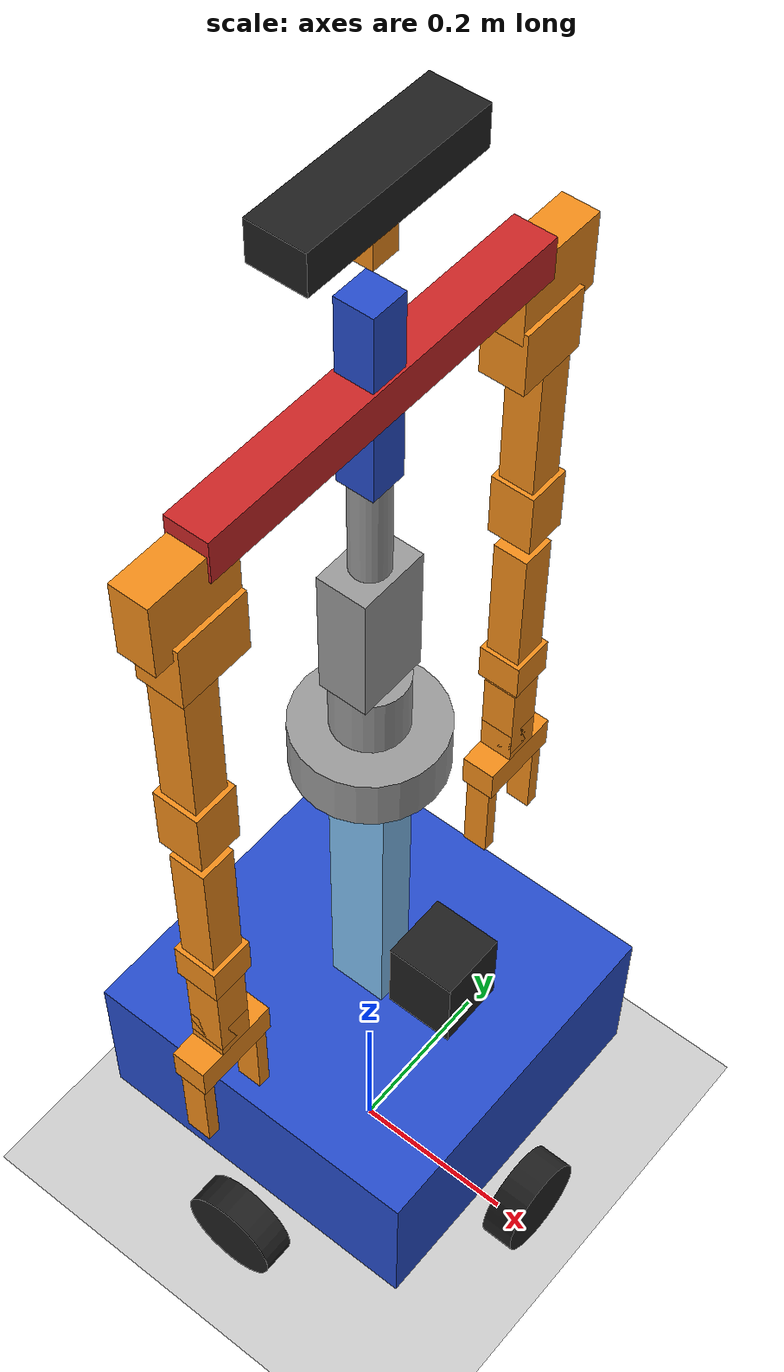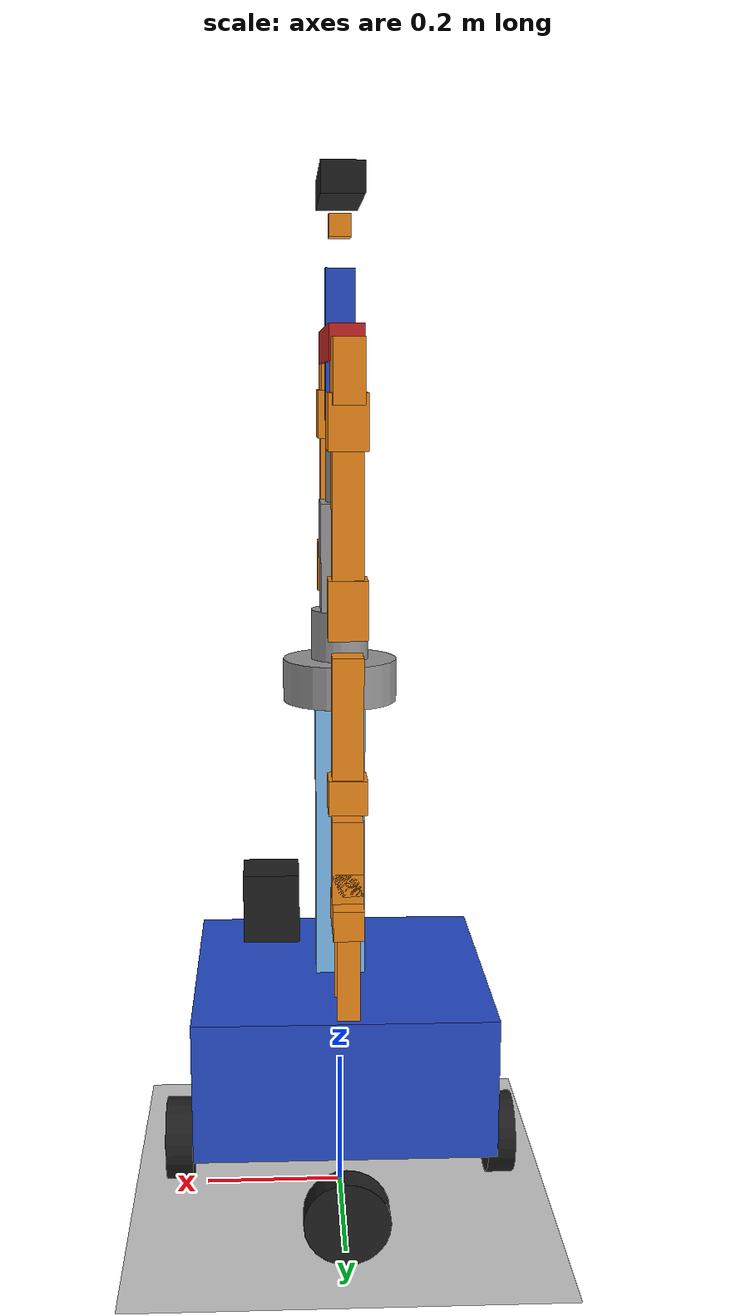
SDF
<sdf version="1.6">
 <world name="default">
  <include><uri>model://ground_plane</uri><pose>0 0 -.0001 0 0 0</pose></include>
  <include><uri>model://sun</uri></include>
  <include><uri>model://justina_simple</uri><pose>0 0 0.01 0 0 0</pose></include>
 </world>
</sdf>

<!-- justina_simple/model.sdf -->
<sdf version='1.6'>
  <model name='justina_simple'>
    <link name='base_link'>
      <pose frame=''>0 0 0 0 -0 0</pose>
      <inertial>
        <pose frame=''>0.000749 0 0.79 0 -0 0</pose>
        <mass>13.35</mass>
        <inertia>
          <ixx>3.96574</ixx>
          <ixy>0</ixy>
          <ixz>0.00349986</ixz>
          <iyy>3.87026</iyy>
          <iyz>8.67362e-19</iyz>
          <izz>0.251702</izz>
        </inertia>
      </inertial>
      <collision name='base_link_collision'>
        <pose frame=''>0 0 0.235 0 -0 0</pose>
        <geometry>
          <box>
            <size>0.42 0.42 0.2</size>
          </box>
        </geometry>
        <surface>
          <contact>
            <ode/>
          </contact>
          <friction>
            <ode/>
          </friction>
        </surface>
      </collision>
      <collision name='base_link_fixed_joint_lump__laser_link_collision_1'>
        <pose frame=''>0.1 0 0.44 0 -0 0</pose>
        <geometry>
          <box>
            <size>0.08 0.08 0.1</size>
          </box>
        </geometry>
        <surface>
          <contact>
            <ode/>
          </contact>
          <friction>
            <ode/>
          </friction>
        </surface>
      </collision>
      <collision name='base_link_fixed_joint_lump__spine_link_collision_2'>
        <pose frame=''>0 0 0.41 0 -0 0</pose>
        <geometry>
          <box>
            <size>0.07 0.045 0.7</size>
          </box>
        </geometry>
        <surface>
          <contact>
            <ode/>
          </contact>
          <friction>
            <ode/>
          </friction>
        </surface>
      </collision>
      <collision name='base_link_fixed_joint_lump__waist_link_collision_3'>
        <pose frame=''>0 0 0.77 0 -0 0</pose>
        <geometry>
          <cylinder>
            <length>0.06</length>
            <radius>0.08</radius>
          </cylinder>
        </geometry>
        <surface>
          <contact>
            <ode/>
          </contact>
          <friction>
            <ode/>
          </friction>
        </surface>
      </collision>
      <collision name='base_link_fixed_joint_lump__waist_link_collision_4'>
        <pose frame=''>0 0 0.83 0 -0 0</pose>
        <geometry>
          <cylinder>
            <length>0.08</length>
            <radius>0.04</radius>
          </cylinder>
        </geometry>
        <surface>
          <contact>
            <ode/>
          </contact>
          <friction>
            <ode/>
          </friction>
        </surface>
      </collision>
      <collision name='base_link_fixed_joint_lump__waist_link_collision_5'>
        <pose frame=''>0 0 0.945 0 -0 0</pose>
        <geometry>
          <box>
            <size>0.055 0.08 0.15</size>
          </box>
        </geometry>
        <surface>
          <contact>
            <ode/>
          </contact>
          <friction>
            <ode/>
          </friction>
        </surface>
      </collision>
      <collision name='base_link_fixed_joint_lump__waist_link_collision_6'>
        <pose frame=''>0 0 1.105 0 -0 0</pose>
        <geometry>
          <cylinder>
            <length>0.17</length>
            <radius>0.02</radius>
          </cylinder>
        </geometry>
        <surface>
          <contact>
            <ode/>
          </contact>
          <friction>
            <ode/>
          </friction>
        </surface>
      </collision>
      <collision name='base_link_fixed_joint_lump__shoulders_link_collision_7'>
        <pose frame=''>0 0 1.23 3.14159 1.57079 3.14159</pose>
        <geometry>
          <box>
            <size>0.045 0.43 0.045</size>
          </box>
        </geometry>
        <surface>
          <contact>
            <ode/>
          </contact>
          <friction>
            <ode/>
          </friction>
        </surface>
      </collision>
      <collision name='base_link_fixed_joint_lump__shoulders_left_link_collision_8'>
        <pose frame=''>-0 0.23 1.195 3.14159 1.57079 3.14159</pose>
        <geometry>
          <box>
            <size>0.08 0.1 0.04</size>
          </box>
        </geometry>
        <surface>
          <contact>
            <ode/>
          </contact>
          <friction>
            <ode/>
          </friction>
        </surface>
      </collision>
      <collision name='base_link_fixed_joint_lump__shoulders_right_link_collision_9'>
        <pose frame=''>-0 -0.23 1.195 3.14159 1.57079 3.14159</pose>
        <geometry>
          <box>
            <size>0.08 0.1 0.04</size>
          </box>
        </geometry>
        <surface>
          <contact>
            <ode/>
          </contact>
          <friction>
            <ode/>
          </friction>
        </surface>
      </collision>
      <collision name='base_link_fixed_joint_lump__wheel_back_collision_10'>
        <pose frame=''>-0.24 0 0.065 1.5708 -0 1.5708</pose>
        <geometry>
          <cylinder>
            <length>0.04</length>
            <radius>0.06</radius>
          </cylinder>
        </geometry>
        <surface>
          <contact>
            <ode/>
          </contact>
          <friction>
            <ode/>
          </friction>
        </surface>
      </collision>
      <collision name='base_link_fixed_joint_lump__wheel_front_collision_11'>
        <pose frame=''>0.24 0 0.065 1.5708 -0 1.5708</pose>
        <geometry>
          <cylinder>
            <length>0.04</length>
            <radius>0.06</radius>
          </cylinder>
        </geometry>
        <surface>
          <contact>
            <ode/>
          </contact>
          <friction>
            <ode/>
          </friction>
        </surface>
      </collision>
      <collision name='base_link_fixed_joint_lump__wheel_left_collision_12'>
        <pose frame=''>0 -0.24 0.065 1.5708 -0 0</pose>
        <geometry>
          <cylinder>
            <length>0.04</length>
            <radius>0.06</radius>
          </cylinder>
        </geometry>
        <surface>
          <contact>
            <ode/>
          </contact>
          <friction>
            <ode/>
          </friction>
        </surface>
      </collision>
      <collision name='base_link_fixed_joint_lump__wheel_right_collision_13'>
        <pose frame=''>0 0.24 0.065 1.5708 -0 0</pose>
        <geometry>
          <cylinder>
            <length>0.04</length>
            <radius>0.06</radius>
          </cylinder>
        </geometry>
        <surface>
          <contact>
            <ode/>
          </contact>
          <friction>
            <ode/>
          </friction>
        </surface>
      </collision>
      <visual name='base_link_visual'>
        <pose frame=''>0 0 0.235 0 -0 0</pose>
        <geometry>
          <box>
            <size>0.42 0.42 0.2</size>
          </box>
        </geometry>
        <material>
          <script>
            <name>Gazebo/Blue</name>
            <uri>file://media/materials/scripts/gazebo.material</uri>
          </script>
        </material>
      </visual>
      <visual name='base_link_fixed_joint_lump__laser_link_visual_1'>
        <pose frame=''>0.1 0 0.44 0 -0 0</pose>
        <geometry>
          <box>
            <size>0.08 0.08 0.1</size>
          </box>
        </geometry>
        <material>
          <script>
            <name>Gazebo/Black</name>
            <uri>file://media/materials/scripts/gazebo.material</uri>
          </script>
        </material>
      </visual>
      <visual name='base_link_fixed_joint_lump__spine_link_visual_2'>
        <pose frame=''>0 0 0.41 0 -0 0</pose>
        <geometry>
          <box>
            <size>0.07 0.045 0.7</size>
          </box>
        </geometry>
        <material>
          <script>
            <name>Gazebo/SkyBlue</name>
            <uri>file://media/materials/scripts/gazebo.material</uri>
          </script>
        </material>
      </visual>
      <visual name='base_link_fixed_joint_lump__waist_link_visual_3'>
        <pose frame=''>0 0 0.77 0 -0 0</pose>
        <geometry>
          <cylinder>
            <length>0.06</length>
            <radius>0.08</radius>
          </cylinder>
        </geometry>
        <material>
          <script>
            <name>Gazebo/Grey</name>
            <uri>file://media/materials/scripts/gazebo.material</uri>
          </script>
        </material>
      </visual>
      <visual name='base_link_fixed_joint_lump__waist_link_visual_4'>
        <pose frame=''>0 0 0.83 0 -0 0</pose>
        <geometry>
          <cylinder>
            <length>0.08</length>
            <radius>0.04</radius>
          </cylinder>
        </geometry>
        <material>
          <script>
            <name>Gazebo/Grey</name>
            <uri>file://media/materials/scripts/gazebo.material</uri>
          </script>
        </material>
      </visual>
      <visual name='base_link_fixed_joint_lump__waist_link_visual_5'>
        <pose frame=''>0 0 0.945 0 -0 0</pose>
        <geometry>
          <box>
            <size>0.055 0.08 0.15</size>
          </box>
        </geometry>
        <material>
          <script>
            <name>Gazebo/Grey</name>
            <uri>file://media/materials/scripts/gazebo.material</uri>
          </script>
        </material>
      </visual>
      <visual name='base_link_fixed_joint_lump__waist_link_visual_6'>
        <pose frame=''>0 0 1.105 0 -0 0</pose>
        <geometry>
          <cylinder>
            <length>0.17</length>
            <radius>0.02</radius>
          </cylinder>
        </geometry>
        <material>
          <script>
            <name>Gazebo/Grey</name>
            <uri>file://media/materials/scripts/gazebo.material</uri>
          </script>
        </material>
      </visual>
      <visual name='base_link_fixed_joint_lump__shoulders_link_visual_7'>
        <pose frame=''>0 0 1.23 3.14159 1.57079 3.14159</pose>
        <geometry>
          <box>
            <size>0.045 0.43 0.045</size>
          </box>
        </geometry>
        <material>
          <script>
            <name>Gazebo/Red</name>
            <uri>file://media/materials/scripts/gazebo.material</uri>
          </script>
        </material>
      </visual>
      <visual name='base_link_fixed_joint_lump__shoulders_left_link_visual_8'>
        <pose frame=''>-0 0.23 1.195 3.14159 1.57079 3.14159</pose>
        <geometry>
          <box>
            <size>0.08 0.1 0.04</size>
          </box>
        </geometry>
        <material>
          <script>
            <name>Gazebo/Orange</name>
            <uri>file://media/materials/scripts/gazebo.material</uri>
          </script>
        </material>
      </visual>
      <visual name='base_link_fixed_joint_lump__shoulders_right_link_visual_9'>
        <pose frame=''>-0 -0.23 1.195 3.14159 1.57079 3.14159</pose>
        <geometry>
          <box>
            <size>0.08 0.1 0.04</size>
          </box>
        </geometry>
        <material>
          <script>
            <name>Gazebo/Orange</name>
            <uri>file://media/materials/scripts/gazebo.material</uri>
          </script>
        </material>
      </visual>
      <visual name='base_link_fixed_joint_lump__wheel_back_visual_10'>
        <pose frame=''>-0.24 0 0.065 1.5708 -0 1.5708</pose>
        <geometry>
          <cylinder>
            <length>0.04</length>
            <radius>0.06</radius>
          </cylinder>
        </geometry>
        <material>
          <script>
            <name>Gazebo/Black</name>
            <uri>file://media/materials/scripts/gazebo.material</uri>
          </script>
        </material>
      </visual>
      <visual name='base_link_fixed_joint_lump__wheel_front_visual_11'>
        <pose frame=''>0.24 0 0.065 1.5708 -0 1.5708</pose>
        <geometry>
          <cylinder>
            <length>0.04</length>
            <radius>0.06</radius>
          </cylinder>
        </geometry>
        <material>
          <script>
            <name>Gazebo/Black</name>
            <uri>file://media/materials/scripts/gazebo.material</uri>
          </script>
        </material>
      </visual>
      <visual name='base_link_fixed_joint_lump__wheel_left_visual_12'>
        <pose frame=''>0 -0.24 0.065 1.5708 -0 0</pose>
        <geometry>
          <cylinder>
            <length>0.04</length>
            <radius>0.06</radius>
          </cylinder>
        </geometry>
        <material>
          <script>
            <name>Gazebo/Black</name>
            <uri>file://media/materials/scripts/gazebo.material</uri>
          </script>
        </material>
      </visual>
      <visual name='base_link_fixed_joint_lump__wheel_right_visual_13'>
        <pose frame=''>0 0.24 0.065 1.5708 -0 0</pose>
        <geometry>
          <cylinder>
            <length>0.04</length>
            <radius>0.06</radius>
          </cylinder>
        </geometry>
        <material>
          <script>
            <name>Gazebo/Black</name>
            <uri>file://media/materials/scripts/gazebo.material</uri>
          </script>
        </material>
      </visual>
      <velocity_decay/>
      <velocity_decay/>
      <velocity_decay/>
      <velocity_decay/>
      <velocity_decay/>
      <velocity_decay/>
      <velocity_decay/>
      <velocity_decay/>
      <velocity_decay/>
      <velocity_decay/>
      <gravity>1</gravity>
      <velocity_decay/>
    </link>
    <joint name='fixed' type='fixed'>
      <child>base_link</child>
      <parent>world</parent>
    </joint>
    <link name='head_link1'>
      <pose frame=''>0 0 1.33 0 -0 0</pose>
      <inertial>
        <pose frame=''>0 0 0 0 -0 0</pose>
        <mass>0.15</mass>
        <inertia>
          <ixx>0.00052</ixx>
          <ixy>0</ixy>
          <ixz>0</ixz>
          <iyy>0.00052</iyy>
          <iyz>0</iyz>
          <izz>4e-05</izz>
        </inertia>
      </inertial>
      <collision name='head_link1_collision'>
        <pose frame=''>0 0 -0.1 0 -0 0</pose>
        <geometry>
          <box>
            <size>0.04 0.04 0.2</size>
          </box>
        </geometry>
        <surface>
          <contact>
            <ode/>
          </contact>
          <friction>
            <ode/>
          </friction>
        </surface>
      </collision>
      <visual name='head_link1_visual'>
        <pose frame=''>0 0 -0.1 0 -0 0</pose>
        <geometry>
          <box>
            <size>0.04 0.04 0.2</size>
          </box>
        </geometry>
        <material>
          <script>
            <name>Gazebo/Blue</name>
            <uri>file://media/materials/scripts/gazebo.material</uri>
          </script>
        </material>
      </visual>
      <gravity>1</gravity>
      <velocity_decay/>
    </link>
    <joint name='pan_connect' type='revolute'>
      <child>head_link1</child>
      <parent>base_link</parent>
      <axis>
        <xyz>0 0 1</xyz>
        <limit>
          <lower>-3</lower>
          <upper>3</upper>
          <effort>1000</effort>
          <velocity>10</velocity>
        </limit>
        <dynamics>
          <damping>0.1</damping>
          <friction>0</friction>
          <spring_reference>0</spring_reference>
          <spring_stiffness>0</spring_stiffness>
        </dynamics>
        <use_parent_model_frame>1</use_parent_model_frame>
      </axis>
    </joint>
    <link name='head_link2'>
      <pose frame=''>0 0 1.385 0 -0 0</pose>
      <inertial>
        <pose frame=''>0 0 0.025 0 -0 0</pose>
        <mass>0.3</mass>
        <inertia>
          <ixx>0.0002808</ixx>
          <ixy>0</ixy>
          <ixz>0</ixz>
          <iyy>0.00077375</iyy>
          <iyz>0</iyz>
          <izz>0.00060885</izz>
        </inertia>
      </inertial>
      <collision name='head_link2_collision'>
        <pose frame=''>0 0 0 0 -0 0</pose>
        <geometry>
          <box>
            <size>0.03 0.03 0.03</size>
          </box>
        </geometry>
        <surface>
          <contact>
            <ode/>
          </contact>
          <friction>
            <ode/>
          </friction>
        </surface>
      </collision>
      <collision name='head_link2_fixed_joint_lump__kinect_link_collision_1'>
        <pose frame=''>0 0 0.05 0 -0 0</pose>
        <geometry>
          <box>
            <size>0.058 0.207 0.04</size>
          </box>
        </geometry>
        <surface>
          <contact>
            <ode/>
          </contact>
          <friction>
            <ode/>
          </friction>
        </surface>
      </collision>
      <visual name='head_link2_visual'>
        <pose frame=''>0 0 0 1.5708 -0 0</pose>
        <geometry>
          <box>
            <size>0.03 0.03 0.03</size>
          </box>
        </geometry>
        <material>
          <script>
            <name>Gazebo/Orange</name>
            <uri>file://media/materials/scripts/gazebo.material</uri>
          </script>
        </material>
      </visual>
      <visual name='head_link2_fixed_joint_lump__kinect_link_visual_1'>
        <pose frame=''>0 0 0.05 0 -0 0</pose>
        <geometry>
          <box>
            <size>0.058 0.207 0.04</size>
          </box>
        </geometry>
        <material>
          <script>
            <name>Gazebo/Black</name>
            <uri>file://media/materials/scripts/gazebo.material</uri>
          </script>
        </material>
      </visual>
      <velocity_decay/>
      <velocity_decay/>
      <gravity>1</gravity>
      <velocity_decay/>
      <sensor name='kinect_camera' type='depth'>
        <update_rate>30</update_rate>
        <visualize>1</visualize>
        <always_on>1</always_on>
        <camera name='__default__'>
          <horizontal_fov>1.0472</horizontal_fov>
          <image>
            <width>640</width>
            <height>480</height>
            <format>B8G8R8</format>
          </image>
          <clip>
            <near>0.1</near>
            <far>100</far>
          </clip>
        </camera>
        <plugin name='kinect_controller' filename='libgazebo_ros_openni_kinect.so'>
          <baseline>0.2</baseline>
          <alwaysOn>true</alwaysOn>
          <updateRate>0.0</updateRate>
          <cameraName>kinect</cameraName>
          <imageTopicName>rgb/image_raw</imageTopicName>
          <cameraInfoTopicName>rgb/camera_info</cameraInfoTopicName>
          <depthImageTopicName>depth/image_raw</depthImageTopicName>
          <depthImageCameraInfoTopicName>depth/camera_info</depthImageCameraInfoTopicName>
          <pointCloudTopicName>points</pointCloudTopicName>
          <frameName>kinect_link</frameName>
          <pointCloudCutoffMax>3.5</pointCloudCutoffMax>
          <pointCloudCutoff>0.5</pointCloudCutoff>
          <CxPrime>0</CxPrime>
          <Cx>0</Cx>
          <Cy>0</Cy>
          <focalLength>0</focalLength>
          <hackBaseline>0</hackBaseline>
        </plugin>
        <pose frame=''>0 0 0.05 0 -0 0</pose>
      </sensor>
    </link>
    <joint name='tilt_connect' type='revolute'>
      <child>head_link2</child>
      <parent>head_link1</parent>
      <axis>
        <xyz>0 1 0</xyz>
        <limit>
          <lower>-3</lower>
          <upper>3</upper>
          <effort>1000</effort>
          <velocity>10</velocity>
        </limit>
        <dynamics>
          <damping>0.1</damping>
          <friction>0</friction>
          <spring_reference>0</spring_reference>
          <spring_stiffness>0</spring_stiffness>
        </dynamics>
        <use_parent_model_frame>1</use_parent_model_frame>
      </axis>
    </joint>
    <link name='left_arm_link1'>
      <pose frame=''>-0 0.235 1.175 3.14159 1.57079 3.14159</pose>
      <inertial>
        <pose frame=''>0.0403 -0.015 0 0 -0 0</pose>
        <mass>0.35</mass>
        <inertia>
          <ixx>0.000215</ixx>
          <ixy>0</ixy>
          <ixz>0</ixz>
          <iyy>0.00025</iyy>
          <iyz>0</iyz>
          <izz>0.000329</izz>
        </inertia>
      </inertial>
      <collision name='left_arm_link1_collision'>
        <pose frame=''>0.0403 -0.015 0 0 -0 0</pose>
        <geometry>
          <box>
            <size>0.07 0.08 0.05</size>
          </box>
        </geometry>
        <surface>
          <contact>
            <ode/>
          </contact>
          <friction>
            <ode/>
          </friction>
        </surface>
      </collision>
      <visual name='left_arm_link1_visual'>
        <pose frame=''>0.0403 -0.015 0 0 -0 0</pose>
        <geometry>
          <box>
            <size>0.07 0.08 0.05</size>
          </box>
        </geometry>
        <material>
          <script>
            <name>Gazebo/Orange</name>
            <uri>file://media/materials/scripts/gazebo.material</uri>
          </script>
        </material>
      </visual>
      <gravity>1</gravity>
      <velocity_decay/>
    </link>
    <joint name='la_1_joint' type='revolute'>
      <child>left_arm_link1</child>
      <parent>base_link</parent>
      <axis>
        <xyz>0 -1 0</xyz>
        <limit>
          <lower>-3</lower>
          <upper>3</upper>
          <effort>1000</effort>
          <velocity>10</velocity>
        </limit>
        <dynamics>
          <damping>0.5</damping>
          <friction>0</friction>
          <spring_reference>0</spring_reference>
          <spring_stiffness>0</spring_stiffness>
        </dynamics>
        <use_parent_model_frame>1</use_parent_model_frame>
      </axis>
    </joint>
    <link name='left_arm_link2'>
      <pose frame=''>-0 0.235 1.1147 3.14159 1.57079 3.14159</pose>
      <inertial>
        <pose frame=''>0.105 0 0 0 -0 0</pose>
        <mass>0.2</mass>
        <inertia>
          <ixx>0.000761</ixx>
          <ixy>0</ixy>
          <ixz>0</ixz>
          <iyy>5.3e-05</iyy>
          <iyz>0</iyz>
          <izz>0.000761</izz>
        </inertia>
      </inertial>
      <collision name='left_arm_link2_collision'>
        <pose frame=''>0.105 0 0 0 -0 0</pose>
        <geometry>
          <box>
            <size>0.21 0.04 0.04</size>
          </box>
        </geometry>
        <surface>
          <contact>
            <ode/>
          </contact>
          <friction>
            <ode/>
          </friction>
        </surface>
      </collision>
      <visual name='left_arm_link2_visual'>
        <pose frame=''>0.105 0 0 0 -0 0</pose>
        <geometry>
          <box>
            <size>0.21 0.04 0.04</size>
          </box>
        </geometry>
        <material>
          <script>
            <name>Gazebo/Orange</name>
            <uri>file://media/materials/scripts/gazebo.material</uri>
          </script>
        </material>
      </visual>
      <gravity>1</gravity>
      <velocity_decay/>
    </link>
    <joint name='la_2_joint' type='revolute'>
      <child>left_arm_link2</child>
      <parent>left_arm_link1</parent>
      <axis>
        <xyz>-1 0 4e-06</xyz>
        <limit>
          <lower>-3</lower>
          <upper>3</upper>
          <effort>1000</effort>
          <velocity>10</velocity>
        </limit>
        <dynamics>
          <damping>0.5</damping>
          <friction>0</friction>
          <spring_reference>0</spring_reference>
          <spring_stiffness>0</spring_stiffness>
        </dynamics>
        <use_parent_model_frame>1</use_parent_model_frame>
      </axis>
    </joint>
    <link name='left_arm_link3'>
      <pose frame=''>-0 0.235 1.1147 3.14159 1.57079 3.14159</pose>
      <inertial>
        <pose frame=''>0.21 0 0 0 -0 0</pose>
        <mass>0.18</mass>
        <inertia>
          <ixx>0.0001218</ixx>
          <ixy>0</ixy>
          <ixz>0</ixz>
          <iyy>7.5e-05</iyy>
          <iyz>0</iyz>
          <izz>0.0001218</izz>
        </inertia>
      </inertial>
      <collision name='left_arm_link3_collision'>
        <pose frame=''>0.21 0 0 0 -0 0</pose>
        <geometry>
          <box>
            <size>0.075 0.05 0.05</size>
          </box>
        </geometry>
        <surface>
          <contact>
            <ode/>
          </contact>
          <friction>
            <ode/>
          </friction>
        </surface>
      </collision>
      <visual name='left_arm_link3_visual'>
        <pose frame=''>0.21 0 0 0 -0 0</pose>
        <geometry>
          <box>
            <size>0.075 0.05 0.05</size>
          </box>
        </geometry>
        <material>
          <script>
            <name>Gazebo/Orange</name>
            <uri>file://media/materials/scripts/gazebo.material</uri>
          </script>
        </material>
      </visual>
      <gravity>1</gravity>
      <velocity_decay/>
    </link>
    <joint name='la_3_joint' type='revolute'>
      <child>left_arm_link3</child>
      <parent>left_arm_link2</parent>
      <axis>
        <xyz>-4e-06 0 -1</xyz>
        <limit>
          <lower>-3</lower>
          <upper>3</upper>
          <effort>1000</effort>
          <velocity>10</velocity>
        </limit>
        <dynamics>
          <damping>0.5</damping>
          <friction>0</friction>
          <spring_reference>0</spring_reference>
          <spring_stiffness>0</spring_stiffness>
        </dynamics>
        <use_parent_model_frame>1</use_parent_model_frame>
      </axis>
    </joint>
    <link name='left_arm_link4'>
      <pose frame=''>-1e-06 0.235 0.8447 3.14159 1.57079 3.14159</pose>
      <inertial>
        <pose frame=''>0.09 0 0 0 -0 0</pose>
        <mass>0.18</mass>
        <inertia>
          <ixx>0.00051</ixx>
          <ixy>0</ixy>
          <ixz>0</ixz>
          <iyy>4.8e-05</iyy>
          <iyz>0</iyz>
          <izz>0.00051</izz>
        </inertia>
      </inertial>
      <collision name='left_arm_link4_collision'>
        <pose frame=''>0.09 0 0 0 -0 0</pose>
        <geometry>
          <box>
            <size>0.18 0.04 0.04</size>
          </box>
        </geometry>
        <surface>
          <contact>
            <ode/>
          </contact>
          <friction>
            <ode/>
          </friction>
        </surface>
      </collision>
      <visual name='left_arm_link4_visual'>
        <pose frame=''>0.09 0 0 0 -0 0</pose>
        <geometry>
          <box>
            <size>0.18 0.04 0.04</size>
          </box>
        </geometry>
        <material>
          <script>
            <name>Gazebo/Orange</name>
            <uri>file://media/materials/scripts/gazebo.material</uri>
          </script>
        </material>
      </visual>
      <gravity>1</gravity>
      <velocity_decay/>
    </link>
    <joint name='la_4_joint' type='revolute'>
      <child>left_arm_link4</child>
      <parent>left_arm_link3</parent>
      <axis>
        <xyz>0 -1 0</xyz>
        <limit>
          <lower>-3</lower>
          <upper>3</upper>
          <effort>1000</effort>
          <velocity>10</velocity>
        </limit>
        <dynamics>
          <damping>0.5</damping>
          <friction>0</friction>
          <spring_reference>0</spring_reference>
          <spring_stiffness>0</spring_stiffness>
        </dynamics>
        <use_parent_model_frame>1</use_parent_model_frame>
      </axis>
    </joint>
    <link name='left_arm_link5'>
      <pose frame=''>-1e-06 0.235 0.8447 3.14159 1.57079 3.14159</pose>
      <inertial>
        <pose frame=''>0.18 0 0 0 -0 0</pose>
        <mass>0.18</mass>
        <inertia>
          <ixx>6.78e-05</ixx>
          <ixy>0</ixy>
          <ixz>0</ixz>
          <iyy>7.5e-05</iyy>
          <iyz>0</iyz>
          <izz>6.78e-05</izz>
        </inertia>
      </inertial>
      <collision name='left_arm_link5_collision'>
        <pose frame=''>0.18 0 0 0 -0 0</pose>
        <geometry>
          <box>
            <size>0.045 0.05 0.05</size>
          </box>
        </geometry>
        <surface>
          <contact>
            <ode/>
          </contact>
          <friction>
            <ode/>
          </friction>
        </surface>
      </collision>
      <visual name='left_arm_link5_visual'>
        <pose frame=''>0.18 0 0 0 -0 0</pose>
        <geometry>
          <box>
            <size>0.045 0.05 0.05</size>
          </box>
        </geometry>
        <material>
          <script>
            <name>Gazebo/Orange</name>
            <uri>file://media/materials/scripts/gazebo.material</uri>
          </script>
        </material>
      </visual>
      <gravity>1</gravity>
      <velocity_decay/>
    </link>
    <joint name='la_5_joint' type='revolute'>
      <child>left_arm_link5</child>
      <parent>left_arm_link4</parent>
      <axis>
        <xyz>-4e-06 0 -1</xyz>
        <limit>
          <lower>-3</lower>
          <upper>3</upper>
          <effort>1000</effort>
          <velocity>10</velocity>
        </limit>
        <dynamics>
          <damping>0.5</damping>
          <friction>0</friction>
          <spring_reference>0</spring_reference>
          <spring_stiffness>0</spring_stiffness>
        </dynamics>
        <use_parent_model_frame>1</use_parent_model_frame>
      </axis>
    </joint>
    <link name='left_arm_link6'>
      <pose frame=''>-2e-06 0.235 0.6321 3.14159 1.57079 3.14159</pose>
      <inertial>
        <pose frame=''>0.05 0 0 0 -0 0</pose>
        <mass>0.15</mass>
        <inertia>
          <ixx>0.000145</ixx>
          <ixy>0</ixy>
          <ixz>0</ixz>
          <iyy>4e-05</iyy>
          <iyz>0</iyz>
          <izz>0.000145</izz>
        </inertia>
      </inertial>
      <collision name='left_arm_link6_collision'>
        <pose frame=''>0.05 0 0 0 -0 0</pose>
        <geometry>
          <box>
            <size>0.1 0.04 0.04</size>
          </box>
        </geometry>
        <surface>
          <contact>
            <ode/>
          </contact>
          <friction>
            <ode/>
          </friction>
        </surface>
      </collision>
      <visual name='left_arm_link6_visual'>
        <pose frame=''>0.05 0 0 0 -0 0</pose>
        <geometry>
          <box>
            <size>0.1 0.04 0.04</size>
          </box>
        </geometry>
        <material>
          <script>
            <name>Gazebo/Orange</name>
            <uri>file://media/materials/scripts/gazebo.material</uri>
          </script>
        </material>
      </visual>
      <gravity>1</gravity>
      <velocity_decay/>
    </link>
    <joint name='la_6_joint' type='revolute'>
      <child>left_arm_link6</child>
      <parent>left_arm_link5</parent>
      <axis>
        <xyz>0 -1 0</xyz>
        <limit>
          <lower>-3</lower>
          <upper>3</upper>
          <effort>1000</effort>
          <velocity>10</velocity>
        </limit>
        <dynamics>
          <damping>0.5</damping>
          <friction>0</friction>
          <spring_reference>0</spring_reference>
          <spring_stiffness>0</spring_stiffness>
        </dynamics>
        <use_parent_model_frame>1</use_parent_model_frame>
      </axis>
    </joint>
    <link name='left_arm_link7'>
      <pose frame=''>-2e-06 0.235 0.6321 3.14159 1.57079 3.14159</pose>
      <inertial>
        <pose frame=''>0.186667 0 0 0 -0 0</pose>
        <mass>0.45</mass>
        <inertia>
          <ixx>0.000985</ixx>
          <ixy>0</ixy>
          <ixz>0</ixz>
          <iyy>0.001758</iyy>
          <iyz>0</iyz>
          <izz>0.00322</izz>
        </inertia>
      </inertial>
      <collision name='left_arm_link7_collision'>
        <pose frame=''>0.1 0 0 0 -0 0</pose>
        <geometry>
          <box>
            <size>0.06 0.04 0.04</size>
          </box>
        </geometry>
        <surface>
          <contact>
            <ode/>
          </contact>
          <friction>
            <ode/>
          </friction>
        </surface>
      </collision>
      <collision name='left_arm_link7_fixed_joint_lump__left_arm_grip_center_collision_1'>
        <pose frame=''>0.13 0 0 0 -0 0</pose>
        <geometry>
          <box>
            <size>0.04 0.1 0.04</size>
          </box>
        </geometry>
        <surface>
          <contact>
            <ode/>
          </contact>
          <friction>
            <ode/>
          </friction>
        </surface>
      </collision>
      <collision name='left_arm_link7_fixed_joint_lump__left_arm_grip_left_collision_2'>
        <pose frame=''>0.195 -0.04 0 0 -0 0</pose>
        <geometry>
          <box>
            <size>0.13 0.015 0.03</size>
          </box>
        </geometry>
        <surface>
          <contact>
            <ode/>
          </contact>
          <friction>
            <ode/>
          </friction>
        </surface>
      </collision>
      <collision name='left_arm_link7_fixed_joint_lump__left_arm_grip_right_collision_3'>
        <pose frame=''>0.195 0.04 0 0 -0 0</pose>
        <geometry>
          <box>
            <size>0.13 0.015 0.03</size>
          </box>
        </geometry>
        <surface>
          <contact>
            <ode/>
          </contact>
          <friction>
            <ode/>
          </friction>
        </surface>
      </collision>
      <visual name='left_arm_link7_visual'>
        <pose frame=''>0.1 0 0 0 -0 0</pose>
        <geometry>
          <box>
            <size>0.06 0.04 0.04</size>
          </box>
        </geometry>
        <material>
          <script>
            <name>Gazebo/Orange</name>
            <uri>file://media/materials/scripts/gazebo.material</uri>
          </script>
        </material>
      </visual>
      <visual name='left_arm_link7_fixed_joint_lump__left_arm_grip_center_visual_1'>
        <pose frame=''>0.13 0 0 0 -0 0</pose>
        <geometry>
          <box>
            <size>0.04 0.1 0.04</size>
          </box>
        </geometry>
        <material>
          <script>
            <name>Gazebo/Orange</name>
            <uri>file://media/materials/scripts/gazebo.material</uri>
          </script>
        </material>
      </visual>
      <visual name='left_arm_link7_fixed_joint_lump__left_arm_grip_left_visual_2'>
        <pose frame=''>0.195 -0.04 0 0 -0 0</pose>
        <geometry>
          <box>
            <size>0.13 0.015 0.03</size>
          </box>
        </geometry>
        <material>
          <script>
            <name>Gazebo/Orange</name>
            <uri>file://media/materials/scripts/gazebo.material</uri>
          </script>
        </material>
      </visual>
      <visual name='left_arm_link7_fixed_joint_lump__left_arm_grip_right_visual_3'>
        <pose frame=''>0.195 0.04 0 0 -0 0</pose>
        <geometry>
          <box>
            <size>0.13 0.015 0.03</size>
          </box>
        </geometry>
        <material>
          <script>
            <name>Gazebo/Orange</name>
            <uri>file://media/materials/scripts/gazebo.material</uri>
          </script>
        </material>
      </visual>
      <velocity_decay/>
      <velocity_decay/>
      <velocity_decay/>
      <gravity>1</gravity>
      <velocity_decay/>
    </link>
    <joint name='la_7_joint' type='revolute'>
      <child>left_arm_link7</child>
      <parent>left_arm_link6</parent>
      <axis>
        <xyz>-4e-06 0 -1</xyz>
        <limit>
          <lower>-3</lower>
          <upper>3</upper>
          <effort>1000</effort>
          <velocity>10</velocity>
        </limit>
        <dynamics>
          <damping>0.5</damping>
          <friction>0</friction>
          <spring_reference>0</spring_reference>
          <spring_stiffness>0</spring_stiffness>
        </dynamics>
        <use_parent_model_frame>1</use_parent_model_frame>
      </axis>
    </joint>
    <link name='right_arm_link1'>
      <pose frame=''>-0 -0.235 1.175 3.14159 1.57079 3.14159</pose>
      <inertial>
        <pose frame=''>0.0403 0.015 0 0 -0 0</pose>
        <mass>0.35</mass>
        <inertia>
          <ixx>0.000215</ixx>
          <ixy>0</ixy>
          <ixz>0</ixz>
          <iyy>0.00025</iyy>
          <iyz>0</iyz>
          <izz>0.000329</izz>
        </inertia>
      </inertial>
      <collision name='right_arm_link1_collision'>
        <pose frame=''>0.0403 0.015 0 0 -0 0</pose>
        <geometry>
          <box>
            <size>0.07 0.08 0.05</size>
          </box>
        </geometry>
        <surface>
          <contact>
            <ode/>
          </contact>
          <friction>
            <ode/>
          </friction>
        </surface>
      </collision>
      <visual name='right_arm_link1_visual'>
        <pose frame=''>0.0403 0.015 0 0 -0 0</pose>
        <geometry>
          <box>
            <size>0.07 0.08 0.05</size>
          </box>
        </geometry>
        <material>
          <script>
            <name>Gazebo/Orange</name>
            <uri>file://media/materials/scripts/gazebo.material</uri>
          </script>
        </material>
      </visual>
      <gravity>1</gravity>
      <velocity_decay/>
    </link>
    <joint name='ra_1_joint' type='revolute'>
      <child>right_arm_link1</child>
      <parent>base_link</parent>
      <axis>
        <xyz>0 -1 0</xyz>
        <limit>
          <lower>-3</lower>
          <upper>3</upper>
          <effort>1000</effort>
          <velocity>10</velocity>
        </limit>
        <dynamics>
          <damping>0.5</damping>
          <friction>0</friction>
          <spring_reference>0</spring_reference>
          <spring_stiffness>0</spring_stiffness>
        </dynamics>
        <use_parent_model_frame>1</use_parent_model_frame>
      </axis>
    </joint>
    <link name='right_arm_link2'>
      <pose frame=''>-0 -0.235 1.1147 3.14159 1.57079 3.14159</pose>
      <inertial>
        <pose frame=''>0.105 0 0 0 -0 0</pose>
        <mass>0.2</mass>
        <inertia>
          <ixx>0.000761</ixx>
          <ixy>0</ixy>
          <ixz>0</ixz>
          <iyy>5.3e-05</iyy>
          <iyz>0</iyz>
          <izz>0.000761</izz>
        </inertia>
      </inertial>
      <collision name='right_arm_link2_collision'>
        <pose frame=''>0.105 0 0 0 -0 0</pose>
        <geometry>
          <box>
            <size>0.21 0.04 0.04</size>
          </box>
        </geometry>
        <surface>
          <contact>
            <ode/>
          </contact>
          <friction>
            <ode/>
          </friction>
        </surface>
      </collision>
      <visual name='right_arm_link2_visual'>
        <pose frame=''>0.105 0 0 0 -0 0</pose>
        <geometry>
          <box>
            <size>0.21 0.04 0.04</size>
          </box>
        </geometry>
        <material>
          <script>
            <name>Gazebo/Orange</name>
            <uri>file://media/materials/scripts/gazebo.material</uri>
          </script>
        </material>
      </visual>
      <gravity>1</gravity>
      <velocity_decay/>
    </link>
    <joint name='ra_2_joint' type='revolute'>
      <child>right_arm_link2</child>
      <parent>right_arm_link1</parent>
      <axis>
        <xyz>-1 0 4e-06</xyz>
        <limit>
          <lower>-3</lower>
          <upper>3</upper>
          <effort>1000</effort>
          <velocity>10</velocity>
        </limit>
        <dynamics>
          <damping>0.5</damping>
          <friction>0</friction>
          <spring_reference>0</spring_reference>
          <spring_stiffness>0</spring_stiffness>
        </dynamics>
        <use_parent_model_frame>1</use_parent_model_frame>
      </axis>
    </joint>
    <link name='right_arm_link3'>
      <pose frame=''>-0 -0.235 1.1147 3.14159 1.57079 3.14159</pose>
      <inertial>
        <pose frame=''>0.21 0 0 0 -0 0</pose>
        <mass>0.18</mass>
        <inertia>
          <ixx>0.0001218</ixx>
          <ixy>0</ixy>
          <ixz>0</ixz>
          <iyy>7.5e-05</iyy>
          <iyz>0</iyz>
          <izz>0.0001218</izz>
        </inertia>
      </inertial>
      <collision name='right_arm_link3_collision'>
        <pose frame=''>0.21 0 0 0 -0 0</pose>
        <geometry>
          <box>
            <size>0.075 0.05 0.05</size>
          </box>
        </geometry>
        <surface>
          <contact>
            <ode/>
          </contact>
          <friction>
            <ode/>
          </friction>
        </surface>
      </collision>
      <visual name='right_arm_link3_visual'>
        <pose frame=''>0.21 0 0 0 -0 0</pose>
        <geometry>
          <box>
            <size>0.075 0.05 0.05</size>
          </box>
        </geometry>
        <material>
          <script>
            <name>Gazebo/Orange</name>
            <uri>file://media/materials/scripts/gazebo.material</uri>
          </script>
        </material>
      </visual>
      <gravity>1</gravity>
      <velocity_decay/>
    </link>
    <joint name='ra_3_joint' type='revolute'>
      <child>right_arm_link3</child>
      <parent>right_arm_link2</parent>
      <axis>
        <xyz>-4e-06 0 -1</xyz>
        <limit>
          <lower>-3</lower>
          <upper>3</upper>
          <effort>1000</effort>
          <velocity>10</velocity>
        </limit>
        <dynamics>
          <damping>0.5</damping>
          <friction>0</friction>
          <spring_reference>0</spring_reference>
          <spring_stiffness>0</spring_stiffness>
        </dynamics>
        <use_parent_model_frame>1</use_parent_model_frame>
      </axis>
    </joint>
    <link name='right_arm_link4'>
      <pose frame=''>-1e-06 -0.235 0.8447 3.14159 1.57079 3.14159</pose>
      <inertial>
        <pose frame=''>0.09 0 0 0 -0 0</pose>
        <mass>0.18</mass>
        <inertia>
          <ixx>0.00051</ixx>
          <ixy>0</ixy>
          <ixz>0</ixz>
          <iyy>4.8e-05</iyy>
          <iyz>0</iyz>
          <izz>0.00051</izz>
        </inertia>
      </inertial>
      <collision name='right_arm_link4_collision'>
        <pose frame=''>0.09 0 0 0 -0 0</pose>
        <geometry>
          <box>
            <size>0.18 0.04 0.04</size>
          </box>
        </geometry>
        <surface>
          <contact>
            <ode/>
          </contact>
          <friction>
            <ode/>
          </friction>
        </surface>
      </collision>
      <visual name='right_arm_link4_visual'>
        <pose frame=''>0.09 0 0 0 -0 0</pose>
        <geometry>
          <box>
            <size>0.18 0.04 0.04</size>
          </box>
        </geometry>
        <material>
          <script>
            <name>Gazebo/Orange</name>
            <uri>file://media/materials/scripts/gazebo.material</uri>
          </script>
        </material>
      </visual>
      <gravity>1</gravity>
      <velocity_decay/>
    </link>
    <joint name='ra_4_joint' type='revolute'>
      <child>right_arm_link4</child>
      <parent>right_arm_link3</parent>
      <axis>
        <xyz>0 -1 0</xyz>
        <limit>
          <lower>-3</lower>
          <upper>3</upper>
          <effort>1000</effort>
          <velocity>10</velocity>
        </limit>
        <dynamics>
          <damping>0.5</damping>
          <friction>0</friction>
          <spring_reference>0</spring_reference>
          <spring_stiffness>0</spring_stiffness>
        </dynamics>
        <use_parent_model_frame>1</use_parent_model_frame>
      </axis>
    </joint>
    <link name='right_arm_link5'>
      <pose frame=''>-1e-06 -0.235 0.8447 3.14159 1.57079 3.14159</pose>
      <inertial>
        <pose frame=''>0.18 0 0 0 -0 0</pose>
        <mass>0.18</mass>
        <inertia>
          <ixx>6.78e-05</ixx>
          <ixy>0</ixy>
          <ixz>0</ixz>
          <iyy>7.5e-05</iyy>
          <iyz>0</iyz>
          <izz>6.78e-05</izz>
        </inertia>
      </inertial>
      <collision name='right_arm_link5_collision'>
        <pose frame=''>0.18 0 0 0 -0 0</pose>
        <geometry>
          <box>
            <size>0.045 0.05 0.05</size>
          </box>
        </geometry>
        <surface>
          <contact>
            <ode/>
          </contact>
          <friction>
            <ode/>
          </friction>
        </surface>
      </collision>
      <visual name='right_arm_link5_visual'>
        <pose frame=''>0.18 0 0 0 -0 0</pose>
        <geometry>
          <box>
            <size>0.045 0.05 0.05</size>
          </box>
        </geometry>
        <material>
          <script>
            <name>Gazebo/Orange</name>
            <uri>file://media/materials/scripts/gazebo.material</uri>
          </script>
        </material>
      </visual>
      <gravity>1</gravity>
      <velocity_decay/>
    </link>
    <joint name='ra_5_joint' type='revolute'>
      <child>right_arm_link5</child>
      <parent>right_arm_link4</parent>
      <axis>
        <xyz>-4e-06 0 -1</xyz>
        <limit>
          <lower>-3</lower>
          <upper>3</upper>
          <effort>1000</effort>
          <velocity>10</velocity>
        </limit>
        <dynamics>
          <damping>0.5</damping>
          <friction>0</friction>
          <spring_reference>0</spring_reference>
          <spring_stiffness>0</spring_stiffness>
        </dynamics>
        <use_parent_model_frame>1</use_parent_model_frame>
      </axis>
    </joint>
    <link name='right_arm_link6'>
      <pose frame=''>-2e-06 -0.235 0.6321 3.14159 1.57079 3.14159</pose>
      <inertial>
        <pose frame=''>0.05 0 0 0 -0 0</pose>
        <mass>0.15</mass>
        <inertia>
          <ixx>0.000145</ixx>
          <ixy>0</ixy>
          <ixz>0</ixz>
          <iyy>4e-05</iyy>
          <iyz>0</iyz>
          <izz>0.000145</izz>
        </inertia>
      </inertial>
      <collision name='right_arm_link6_collision'>
        <pose frame=''>0.05 0 0 0 -0 0</pose>
        <geometry>
          <box>
            <size>0.1 0.04 0.04</size>
          </box>
        </geometry>
        <surface>
          <contact>
            <ode/>
          </contact>
          <friction>
            <ode/>
          </friction>
        </surface>
      </collision>
      <visual name='right_arm_link6_visual'>
        <pose frame=''>0.05 0 0 0 -0 0</pose>
        <geometry>
          <box>
            <size>0.1 0.04 0.04</size>
          </box>
        </geometry>
        <material>
          <script>
            <name>Gazebo/Orange</name>
            <uri>file://media/materials/scripts/gazebo.material</uri>
          </script>
        </material>
      </visual>
      <gravity>1</gravity>
      <velocity_decay/>
    </link>
    <joint name='ra_6_joint' type='revolute'>
      <child>right_arm_link6</child>
      <parent>right_arm_link5</parent>
      <axis>
        <xyz>0 -1 0</xyz>
        <limit>
          <lower>-3</lower>
          <upper>3</upper>
          <effort>1000</effort>
          <velocity>10</velocity>
        </limit>
        <dynamics>
          <damping>0.5</damping>
          <friction>0</friction>
          <spring_reference>0</spring_reference>
          <spring_stiffness>0</spring_stiffness>
        </dynamics>
        <use_parent_model_frame>1</use_parent_model_frame>
      </axis>
    </joint>
    <link name='right_arm_link7'>
      <pose frame=''>-2e-06 -0.235 0.6321 3.14159 1.57079 3.14159</pose>
      <inertial>
        <pose frame=''>0.186667 0 0 0 -0 0</pose>
        <mass>0.45</mass>
        <inertia>
          <ixx>0.000985</ixx>
          <ixy>0</ixy>
          <ixz>0</ixz>
          <iyy>0.001758</iyy>
          <iyz>0</iyz>
          <izz>0.00322</izz>
        </inertia>
      </inertial>
      <collision name='right_arm_link7_collision'>
        <pose frame=''>0.1 0 0 0 -0 0</pose>
        <geometry>
          <box>
            <size>0.06 0.04 0.04</size>
          </box>
        </geometry>
        <surface>
          <contact>
            <ode/>
          </contact>
          <friction>
            <ode/>
          </friction>
        </surface>
      </collision>
      <collision name='right_arm_link7_fixed_joint_lump__right_arm_grip_center_collision_1'>
        <pose frame=''>0.13 0 0 0 -0 0</pose>
        <geometry>
          <box>
            <size>0.04 0.1 0.04</size>
          </box>
        </geometry>
        <surface>
          <contact>
            <ode/>
          </contact>
          <friction>
            <ode/>
          </friction>
        </surface>
      </collision>
      <collision name='right_arm_link7_fixed_joint_lump__right_arm_grip_left_collision_2'>
        <pose frame=''>0.195 -0.04 0 0 -0 0</pose>
        <geometry>
          <box>
            <size>0.13 0.015 0.03</size>
          </box>
        </geometry>
        <surface>
          <contact>
            <ode/>
          </contact>
          <friction>
            <ode/>
          </friction>
        </surface>
      </collision>
      <collision name='right_arm_link7_fixed_joint_lump__right_arm_grip_right_collision_3'>
        <pose frame=''>0.195 0.04 0 0 -0 0</pose>
        <geometry>
          <box>
            <size>0.13 0.015 0.03</size>
          </box>
        </geometry>
        <surface>
          <contact>
            <ode/>
          </contact>
          <friction>
            <ode/>
          </friction>
        </surface>
      </collision>
      <visual name='right_arm_link7_visual'>
        <pose frame=''>0.1 0 0 0 -0 0</pose>
        <geometry>
          <box>
            <size>0.06 0.04 0.04</size>
          </box>
        </geometry>
        <material>
          <script>
            <name>Gazebo/Orange</name>
            <uri>file://media/materials/scripts/gazebo.material</uri>
          </script>
        </material>
      </visual>
      <visual name='right_arm_link7_fixed_joint_lump__right_arm_grip_center_visual_1'>
        <pose frame=''>0.13 0 0 0 -0 0</pose>
        <geometry>
          <box>
            <size>0.04 0.1 0.04</size>
          </box>
        </geometry>
        <material>
          <script>
            <name>Gazebo/Orange</name>
            <uri>file://media/materials/scripts/gazebo.material</uri>
          </script>
        </material>
      </visual>
      <visual name='right_arm_link7_fixed_joint_lump__right_arm_grip_left_visual_2'>
        <pose frame=''>0.195 -0.04 0 0 -0 0</pose>
        <geometry>
          <box>
            <size>0.13 0.015 0.03</size>
          </box>
        </geometry>
        <material>
          <script>
            <name>Gazebo/Orange</name>
            <uri>file://media/materials/scripts/gazebo.material</uri>
          </script>
        </material>
      </visual>
      <visual name='right_arm_link7_fixed_joint_lump__right_arm_grip_right_visual_3'>
        <pose frame=''>0.195 0.04 0 0 -0 0</pose>
        <geometry>
          <box>
            <size>0.13 0.015 0.03</size>
          </box>
        </geometry>
        <material>
          <script>
            <name>Gazebo/Orange</name>
            <uri>file://media/materials/scripts/gazebo.material</uri>
          </script>
        </material>
      </visual>
      <velocity_decay/>
      <velocity_decay/>
      <velocity_decay/>
      <gravity>1</gravity>
      <velocity_decay/>
    </link>
    <joint name='ra_7_joint' type='revolute'>
      <child>right_arm_link7</child>
      <parent>right_arm_link6</parent>
      <axis>
        <xyz>-4e-06 0 -1</xyz>
        <limit>
          <lower>-3</lower>
          <upper>3</upper>
          <effort>1000</effort>
          <velocity>10</velocity>
        </limit>
        <dynamics>
          <damping>0.5</damping>
          <friction>0</friction>
          <spring_reference>0</spring_reference>
          <spring_stiffness>0</spring_stiffness>
        </dynamics>
        <use_parent_model_frame>1</use_parent_model_frame>
      </axis>
    </joint>
    <static>0</static>
    <plugin name='ros_control' filename='libgazebo_ros_control.so'>
      <robotNamespace>/justina_simple</robotNamespace>
    </plugin>
  </model>
</sdf>
